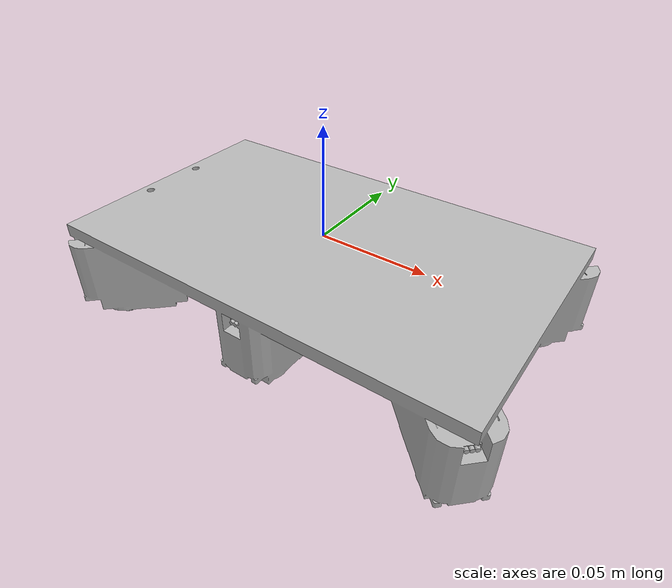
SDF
<sdf version="1.7">
 <world name="default">
  <light name="sun" type="directional">
   <pose>0 0 10 0 -0 0</pose>
   <diffuse>0.8 0.8 0.8 1</diffuse>
   <specular>0.2 0.2 0.2 1</specular>
   <attenuation>
    <range>1000</range>
    <constant>0.9</constant>
    <linear>0.01</linear>
    <quadratic>0.001</quadratic>
   </attenuation>
   <direction>-0.5 0.1 -0.9</direction>
   <spot><inner_angle>0</inner_angle><outer_angle>0</outer_angle><falloff>0</falloff></spot>
  </light>
  <model name="ground_plane">
   <static>1</static>
   <link name="link">
    <collision name="collision">
     <geometry><plane><normal>0 0 1</normal><size>100 100</size></plane></geometry>
     <surface>
      <contact><collide_bitmask>65535</collide_bitmask></contact>
      <friction><ode><mu>100</mu><mu2>50</mu2></ode></friction>
     </surface>
    </collision>
    <visual name="visual">
     <cast_shadows>0</cast_shadows>
     <geometry><plane><normal>0 0 1</normal><size>100 100</size></plane></geometry>
     <material>
      <script><uri>file://media/materials/scripts/gazebo.material</uri><name>Gazebo/Grey</name></script>
     </material>
    </visual>
   </link>
  </model>
  <gravity>0 0 -9.8</gravity>
  <magnetic_field>6e-06 2.3e-05 -4.2e-05</magnetic_field>
  <atmosphere type="adiabatic"/>
  <physics type="ode">
   <max_step_size>0.001</max_step_size>
   <real_time_factor>1</real_time_factor>
   <real_time_update_rate>1000</real_time_update_rate>
  </physics>
  <scene><ambient>0.4 0.4 0.4 1</ambient><background>0.7 0.7 0.7 1</background><shadows>1</shadows></scene>
  <spherical_coordinates>
   <surface_model>EARTH_WGS84</surface_model>
   <latitude_deg>0</latitude_deg>
   <longitude_deg>0</longitude_deg>
   <elevation>0</elevation>
   <heading_deg>0</heading_deg>
  </spherical_coordinates>
  <model name="world2">
   <link name="base_link">
    <inertial>
     <pose>-0.007536 -0.000681 0.012617 0 -0 0</pose>
     <mass>34.2364</mass>
     <inertia>
      <ixx>2.74577</ixx>
      <ixy>0.0530029</ixy>
      <ixz>0.00478816</ixz>
      <iyy>6.36343</iyy>
      <iyz>0.00160204</iyz>
      <izz>9.10337</izz>
     </inertia>
    </inertial>
    <collision name="base_link_collision">
     <geometry>
      <mesh><scale>1 1 1</scale><uri>/home/krishnakanth/catkin_ws/src/world2/meshes/base_link.STL</uri></mesh>
     </geometry>
    </collision>
    <visual name="base_link_visual">
     <geometry>
      <mesh><scale>1 1 1</scale><uri>/home/krishnakanth/catkin_ws/src/world2/meshes/base_link.STL</uri></mesh>
     </geometry>
    </visual>
   </link>
   <pose>-0 0 -1.6e-05 3.2e-05 -0 0</pose>
  </model>
 </world>
</sdf>
